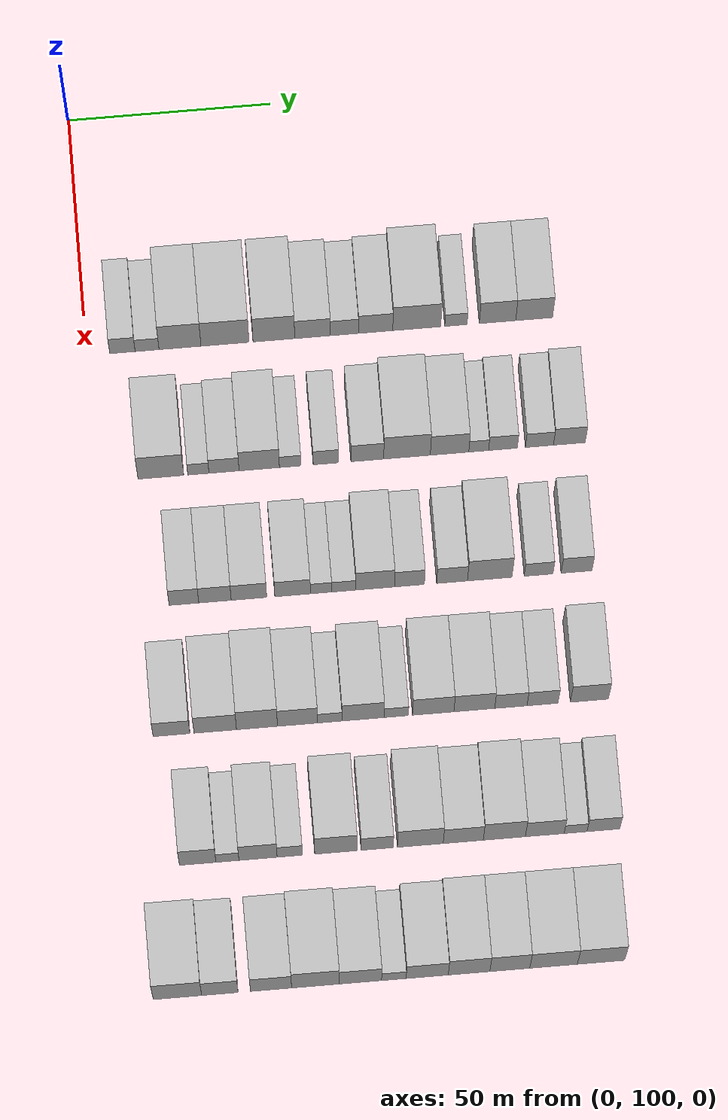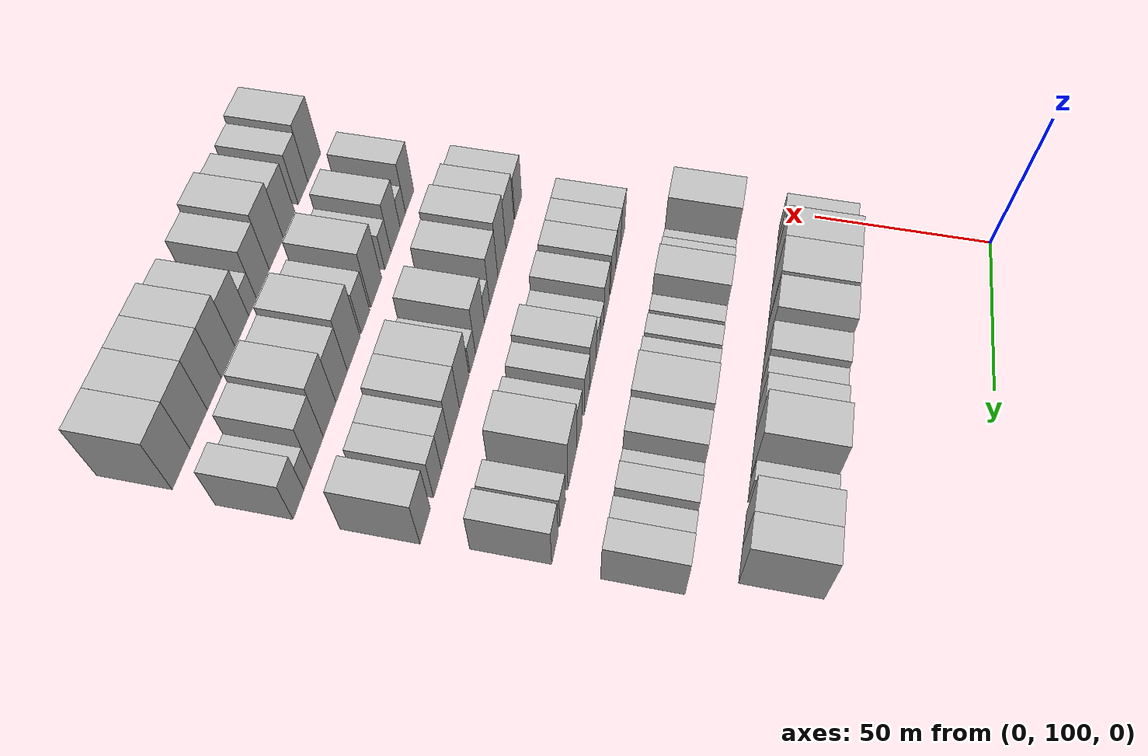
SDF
<sdf version="1.6">
 <world name="default">
  <model name="building_69">
   <static>1</static>
   <pose>50.0000 108.8037 0 0.000000 0.000000 0.000000</pose>
   <link name="link">
    <pose>0 0 7.50 0 0 0</pose>
    <collision name="collision"><geometry><box><size>20.0000 6.2501 15.0000</size></box></geometry></collision>
    <visual name="visual">
     <cast_shadows>0</cast_shadows>
     <geometry><box><size>20.0000 6.2501 15.0000</size></box></geometry>
     <material>
      <script>
       <uri>model://HANNAS_wall/materials/scripts</uri>
       <uri>model://HANNAS_wall/materials/textures</uri>
       <name>vrc/HANNAS_wall</name>
      </script>
     </material>
    </visual>
   </link>
  </model>
  <model name="building_70">
   <static>1</static>
   <pose>50.0000 114.8649 0 0.000000 0.000000 0.000000</pose>
   <link name="link">
    <pose>0 0 6.00 0 0 0</pose>
    <collision name="collision"><geometry><box><size>20.0000 5.8724 12.0000</size></box></geometry></collision>
    <visual name="visual">
     <cast_shadows>0</cast_shadows>
     <geometry><box><size>20.0000 5.8724 12.0000</size></box></geometry>
     <material>
      <script>
       <uri>model://HANNAS_wall/materials/scripts</uri>
       <uri>model://HANNAS_wall/materials/textures</uri>
       <name>vrc/HANNAS_wall</name>
      </script>
     </material>
    </visual>
   </link>
  </model>
  <model name="building_71">
   <static>1</static>
   <pose>50.0000 122.9690 0 0.000000 0.000000 0.000000</pose>
   <link name="link">
    <pose>0 0 12.00 0 0 0</pose>
    <collision name="collision"><geometry><box><size>20.0000 10.3356 24.0000</size></box></geometry></collision>
    <visual name="visual">
     <cast_shadows>0</cast_shadows>
     <geometry><box><size>20.0000 10.3356 24.0000</size></box></geometry>
     <material>
      <script>
       <uri>model://HANNAS_wall/materials/scripts</uri>
       <uri>model://HANNAS_wall/materials/textures</uri>
       <name>vrc/HANNAS_wall</name>
      </script>
     </material>
    </visual>
   </link>
  </model>
  <model name="building_72">
   <static>1</static>
   <pose>50.0000 134.0498 0 0.000000 0.000000 0.000000</pose>
   <link name="link">
    <pose>0 0 12.00 0 0 0</pose>
    <collision name="collision"><geometry><box><size>20.0000 11.8261 24.0000</size></box></geometry></collision>
    <visual name="visual">
     <cast_shadows>0</cast_shadows>
     <geometry><box><size>20.0000 11.8261 24.0000</size></box></geometry>
     <material>
      <script>
       <uri>model://HANNAS_wall/materials/scripts</uri>
       <uri>model://HANNAS_wall/materials/textures</uri>
       <name>vrc/HANNAS_wall</name>
      </script>
     </material>
    </visual>
   </link>
  </model>
  <model name="building_73">
   <static>1</static>
   <pose>50.0000 146.1005 0 0.000000 0.000000 0.000000</pose>
   <link name="link">
    <pose>0 0 12.00 0 0 0</pose>
    <collision name="collision"><geometry><box><size>20.0000 10.2753 24.0000</size></box></geometry></collision>
    <visual name="visual">
     <cast_shadows>0</cast_shadows>
     <geometry><box><size>20.0000 10.2753 24.0000</size></box></geometry>
     <material>
      <script>
       <uri>model://HANNAS_wall/materials/scripts</uri>
       <uri>model://HANNAS_wall/materials/textures</uri>
       <name>vrc/HANNAS_wall</name>
      </script>
     </material>
    </visual>
   </link>
  </model>
  <model name="building_74">
   <static>1</static>
   <pose>50.0000 155.6452 0 0.000000 0.000000 0.000000</pose>
   <link name="link">
    <pose>0 0 9.00 0 0 0</pose>
    <collision name="collision"><geometry><box><size>20.0000 8.8141 18.0000</size></box></geometry></collision>
    <visual name="visual">
     <cast_shadows>0</cast_shadows>
     <geometry><box><size>20.0000 8.8141 18.0000</size></box></geometry>
     <material>
      <script>
       <uri>model://HANNAS_wall/materials/scripts</uri>
       <uri>model://HANNAS_wall/materials/textures</uri>
       <name>vrc/HANNAS_wall</name>
      </script>
     </material>
    </visual>
   </link>
  </model>
  <model name="building_75">
   <static>1</static>
   <pose>50.0000 163.5061 0 0.000000 0.000000 0.000000</pose>
   <link name="link">
    <pose>0 0 7.50 0 0 0</pose>
    <collision name="collision"><geometry><box><size>20.0000 6.9077 15.0000</size></box></geometry></collision>
    <visual name="visual">
     <cast_shadows>0</cast_shadows>
     <geometry><box><size>20.0000 6.9077 15.0000</size></box></geometry>
     <material>
      <script>
       <uri>model://HANNAS_wall/materials/scripts</uri>
       <uri>model://HANNAS_wall/materials/textures</uri>
       <name>vrc/HANNAS_wall</name>
      </script>
     </material>
    </visual>
   </link>
  </model>
  <model name="building_76">
   <static>1</static>
   <pose>50.0000 171.1887 0 0.000000 0.000000 0.000000</pose>
   <link name="link">
    <pose>0 0 9.00 0 0 0</pose>
    <collision name="collision"><geometry><box><size>20.0000 8.4576 18.0000</size></box></geometry></collision>
    <visual name="visual">
     <cast_shadows>0</cast_shadows>
     <geometry><box><size>20.0000 8.4576 18.0000</size></box></geometry>
     <material>
      <script>
       <uri>model://HANNAS_wall/materials/scripts</uri>
       <uri>model://HANNAS_wall/materials/textures</uri>
       <name>vrc/HANNAS_wall</name>
      </script>
     </material>
    </visual>
   </link>
  </model>
  <model name="building_77">
   <static>1</static>
   <pose>50.0000 181.3337 0 0.000000 0.000000 0.000000</pose>
   <link name="link">
    <pose>0 0 12.00 0 0 0</pose>
    <collision name="collision"><geometry><box><size>20.0000 11.8323 24.0000</size></box></geometry></collision>
    <visual name="visual">
     <cast_shadows>0</cast_shadows>
     <geometry><box><size>20.0000 11.8323 24.0000</size></box></geometry>
     <material>
      <script>
       <uri>model://HANNAS_wall/materials/scripts</uri>
       <uri>model://HANNAS_wall/materials/textures</uri>
       <name>vrc/HANNAS_wall</name>
      </script>
     </material>
    </visual>
   </link>
  </model>
  <model name="building_78">
   <static>1</static>
   <pose>50.0000 191.0068 0 0.000000 0.000000 0.000000</pose>
   <link name="link">
    <pose>0 0 6.00 0 0 0</pose>
    <collision name="collision"><geometry><box><size>20.0000 5.5139 12.0000</size></box></geometry></collision>
    <visual name="visual">
     <cast_shadows>0</cast_shadows>
     <geometry><box><size>20.0000 5.5139 12.0000</size></box></geometry>
     <material>
      <script>
       <uri>model://HANNAS_wall/materials/scripts</uri>
       <uri>model://HANNAS_wall/materials/textures</uri>
       <name>vrc/HANNAS_wall</name>
      </script>
     </material>
    </visual>
   </link>
  </model>
  <model name="building_79">
   <static>1</static>
   <pose>50.0000 201.2612 0 0.000000 0.000000 0.000000</pose>
   <link name="link">
    <pose>0 0 10.50 0 0 0</pose>
    <collision name="collision"><geometry><box><size>20.0000 8.9948 21.0000</size></box></geometry></collision>
    <visual name="visual">
     <cast_shadows>0</cast_shadows>
     <geometry><box><size>20.0000 8.9948 21.0000</size></box></geometry>
     <material>
      <script>
       <uri>model://HANNAS_wall/materials/scripts</uri>
       <uri>model://HANNAS_wall/materials/textures</uri>
       <name>vrc/HANNAS_wall</name>
      </script>
     </material>
    </visual>
   </link>
  </model>
  <model name="building_80">
   <static>1</static>
   <pose>50.0000 210.3020 0 0.000000 0.000000 0.000000</pose>
   <link name="link">
    <pose>0 0 10.50 0 0 0</pose>
    <collision name="collision"><geometry><box><size>20.0000 9.0868 21.0000</size></box></geometry></collision>
    <visual name="visual">
     <cast_shadows>0</cast_shadows>
     <geometry><box><size>20.0000 9.0868 21.0000</size></box></geometry>
     <material>
      <script>
       <uri>model://HANNAS_wall/materials/scripts</uri>
       <uri>model://HANNAS_wall/materials/textures</uri>
       <name>vrc/HANNAS_wall</name>
      </script>
     </material>
    </visual>
   </link>
  </model>
  <model name="building_191">
   <static>1</static>
   <pose>82.0000 115.7651 0 0.000000 0.000000 0.000000</pose>
   <link name="link">
    <pose>0 0 12.00 0 0 0</pose>
    <collision name="collision"><geometry><box><size>20.0000 11.2142 24.0000</size></box></geometry></collision>
    <visual name="visual">
     <cast_shadows>0</cast_shadows>
     <geometry><box><size>20.0000 11.2142 24.0000</size></box></geometry>
     <material>
      <script>
       <uri>model://HANNAS_wall/materials/scripts</uri>
       <uri>model://HANNAS_wall/materials/textures</uri>
       <name>vrc/HANNAS_wall</name>
      </script>
     </material>
    </visual>
   </link>
  </model>
  <model name="building_192">
   <static>1</static>
   <pose>82.0000 124.9612 0 0.000000 0.000000 0.000000</pose>
   <link name="link">
    <pose>0 0 6.00 0 0 0</pose>
    <collision name="collision"><geometry><box><size>20.0000 5.1780 12.0000</size></box></geometry></collision>
    <visual name="visual">
     <cast_shadows>0</cast_shadows>
     <geometry><box><size>20.0000 5.1780 12.0000</size></box></geometry>
     <material>
      <script>
       <uri>model://HANNAS_wall/materials/scripts</uri>
       <uri>model://HANNAS_wall/materials/textures</uri>
       <name>vrc/HANNAS_wall</name>
      </script>
     </material>
    </visual>
   </link>
  </model>
  <model name="building_193">
   <static>1</static>
   <pose>82.0000 131.2484 0 0.000000 0.000000 0.000000</pose>
   <link name="link">
    <pose>0 0 7.50 0 0 0</pose>
    <collision name="collision"><geometry><box><size>20.0000 7.3964 15.0000</size></box></geometry></collision>
    <visual name="visual">
     <cast_shadows>0</cast_shadows>
     <geometry><box><size>20.0000 7.3964 15.0000</size></box></geometry>
     <material>
      <script>
       <uri>model://HANNAS_wall/materials/scripts</uri>
       <uri>model://HANNAS_wall/materials/textures</uri>
       <name>vrc/HANNAS_wall</name>
      </script>
     </material>
    </visual>
   </link>
  </model>
  <model name="building_194">
   <static>1</static>
   <pose>82.0000 139.9005 0 0.000000 0.000000 0.000000</pose>
   <link name="link">
    <pose>0 0 10.50 0 0 0</pose>
    <collision name="collision"><geometry><box><size>20.0000 9.9077 21.0000</size></box></geometry></collision>
    <visual name="visual">
     <cast_shadows>0</cast_shadows>
     <geometry><box><size>20.0000 9.9077 21.0000</size></box></geometry>
     <material>
      <script>
       <uri>model://HANNAS_wall/materials/scripts</uri>
       <uri>model://HANNAS_wall/materials/textures</uri>
       <name>vrc/HANNAS_wall</name>
      </script>
     </material>
    </visual>
   </link>
  </model>
  <model name="building_195">
   <static>1</static>
   <pose>82.0000 147.5036 0 0.000000 0.000000 0.000000</pose>
   <link name="link">
    <pose>0 0 6.00 0 0 0</pose>
    <collision name="collision"><geometry><box><size>20.0000 5.2987 12.0000</size></box></geometry></collision>
    <visual name="visual">
     <cast_shadows>0</cast_shadows>
     <geometry><box><size>20.0000 5.2987 12.0000</size></box></geometry>
     <material>
      <script>
       <uri>model://HANNAS_wall/materials/scripts</uri>
       <uri>model://HANNAS_wall/materials/textures</uri>
       <name>vrc/HANNAS_wall</name>
      </script>
     </material>
    </visual>
   </link>
  </model>
  <model name="building_196">
   <static>1</static>
   <pose>82.0000 156.2833 0 0.000000 0.000000 0.000000</pose>
   <link name="link">
    <pose>0 0 7.50 0 0 0</pose>
    <collision name="collision"><geometry><box><size>20.0000 6.2606 15.0000</size></box></geometry></collision>
    <visual name="visual">
     <cast_shadows>0</cast_shadows>
     <geometry><box><size>20.0000 6.2606 15.0000</size></box></geometry>
     <material>
      <script>
       <uri>model://HANNAS_wall/materials/scripts</uri>
       <uri>model://HANNAS_wall/materials/textures</uri>
       <name>vrc/HANNAS_wall</name>
      </script>
     </material>
    </visual>
   </link>
  </model>
  <model name="building_197">
   <static>1</static>
   <pose>82.0000 166.4361 0 0.000000 0.000000 0.000000</pose>
   <link name="link">
    <pose>0 0 9.00 0 0 0</pose>
    <collision name="collision"><geometry><box><size>20.0000 8.0451 18.0000</size></box></geometry></collision>
    <visual name="visual">
     <cast_shadows>0</cast_shadows>
     <geometry><box><size>20.0000 8.0451 18.0000</size></box></geometry>
     <material>
      <script>
       <uri>model://HANNAS_wall/materials/scripts</uri>
       <uri>model://HANNAS_wall/materials/textures</uri>
       <name>vrc/HANNAS_wall</name>
      </script>
     </material>
    </visual>
   </link>
  </model>
  <model name="building_198">
   <static>1</static>
   <pose>82.0000 176.1907 0 0.000000 0.000000 0.000000</pose>
   <link name="link">
    <pose>0 0 12.00 0 0 0</pose>
    <collision name="collision"><geometry><box><size>20.0000 11.4642 24.0000</size></box></geometry></collision>
    <visual name="visual">
     <cast_shadows>0</cast_shadows>
     <geometry><box><size>20.0000 11.4642 24.0000</size></box></geometry>
     <material>
      <script>
       <uri>model://HANNAS_wall/materials/scripts</uri>
       <uri>model://HANNAS_wall/materials/textures</uri>
       <name>vrc/HANNAS_wall</name>
      </script>
     </material>
    </visual>
   </link>
  </model>
  <model name="building_199">
   <static>1</static>
   <pose>82.0000 186.6505 0 0.000000 0.000000 0.000000</pose>
   <link name="link">
    <pose>0 0 10.50 0 0 0</pose>
    <collision name="collision"><geometry><box><size>20.0000 9.4553 21.0000</size></box></geometry></collision>
    <visual name="visual">
     <cast_shadows>0</cast_shadows>
     <geometry><box><size>20.0000 9.4553 21.0000</size></box></geometry>
     <material>
      <script>
       <uri>model://HANNAS_wall/materials/scripts</uri>
       <uri>model://HANNAS_wall/materials/textures</uri>
       <name>vrc/HANNAS_wall</name>
      </script>
     </material>
    </visual>
   </link>
  </model>
  <model name="building_200">
   <static>1</static>
   <pose>82.0000 193.8093 0 0.000000 0.000000 0.000000</pose>
   <link name="link">
    <pose>0 0 6.00 0 0 0</pose>
    <collision name="collision"><geometry><box><size>20.0000 4.8623 12.0000</size></box></geometry></collision>
    <visual name="visual">
     <cast_shadows>0</cast_shadows>
     <geometry><box><size>20.0000 4.8623 12.0000</size></box></geometry>
     <material>
      <script>
       <uri>model://HANNAS_wall/materials/scripts</uri>
       <uri>model://HANNAS_wall/materials/textures</uri>
       <name>vrc/HANNAS_wall</name>
      </script>
     </material>
    </visual>
   </link>
  </model>
  <model name="building_201">
   <static>1</static>
   <pose>82.0000 199.7727 0 0.000000 0.000000 0.000000</pose>
   <link name="link">
    <pose>0 0 7.50 0 0 0</pose>
    <collision name="collision"><geometry><box><size>20.0000 7.0646 15.0000</size></box></geometry></collision>
    <visual name="visual">
     <cast_shadows>0</cast_shadows>
     <geometry><box><size>20.0000 7.0646 15.0000</size></box></geometry>
     <material>
      <script>
       <uri>model://HANNAS_wall/materials/scripts</uri>
       <uri>model://HANNAS_wall/materials/textures</uri>
       <name>vrc/HANNAS_wall</name>
      </script>
     </material>
    </visual>
   </link>
  </model>
  <model name="building_202">
   <static>1</static>
   <pose>82.0000 208.7491 0 0.000000 0.000000 0.000000</pose>
   <link name="link">
    <pose>0 0 7.50 0 0 0</pose>
    <collision name="collision"><geometry><box><size>20.0000 6.8882 15.0000</size></box></geometry></collision>
    <visual name="visual">
     <cast_shadows>0</cast_shadows>
     <geometry><box><size>20.0000 6.8882 15.0000</size></box></geometry>
     <material>
      <script>
       <uri>model://HANNAS_wall/materials/scripts</uri>
       <uri>model://HANNAS_wall/materials/textures</uri>
       <name>vrc/HANNAS_wall</name>
      </script>
     </material>
    </visual>
   </link>
  </model>
  <model name="building_203">
   <static>1</static>
   <pose>82.0000 216.0948 0 0.000000 0.000000 0.000000</pose>
   <link name="link">
    <pose>0 0 9.00 0 0 0</pose>
    <collision name="collision"><geometry><box><size>20.0000 7.8031 18.0000</size></box></geometry></collision>
    <visual name="visual">
     <cast_shadows>0</cast_shadows>
     <geometry><box><size>20.0000 7.8031 18.0000</size></box></geometry>
     <material>
      <script>
       <uri>model://HANNAS_wall/materials/scripts</uri>
       <uri>model://HANNAS_wall/materials/textures</uri>
       <name>vrc/HANNAS_wall</name>
      </script>
     </material>
    </visual>
   </link>
  </model>
  <model name="building_316">
   <static>1</static>
   <pose>114.0000 118.9099 0 0.000000 0.000000 0.000000</pose>
   <link name="link">
    <pose>0 0 9.00 0 0 0</pose>
    <collision name="collision"><geometry><box><size>20.0000 7.2410 18.0000</size></box></geometry></collision>
    <visual name="visual">
     <cast_shadows>0</cast_shadows>
     <geometry><box><size>20.0000 7.2410 18.0000</size></box></geometry>
     <material>
      <script>
       <uri>model://HANNAS_wall/materials/scripts</uri>
       <uri>model://HANNAS_wall/materials/textures</uri>
       <name>vrc/HANNAS_wall</name>
      </script>
     </material>
    </visual>
   </link>
  </model>
  <model name="building_317">
   <static>1</static>
   <pose>114.0000 126.4927 0 0.000000 0.000000 0.000000</pose>
   <link name="link">
    <pose>0 0 9.00 0 0 0</pose>
    <collision name="collision"><geometry><box><size>20.0000 7.9246 18.0000</size></box></geometry></collision>
    <visual name="visual">
     <cast_shadows>0</cast_shadows>
     <geometry><box><size>20.0000 7.9246 18.0000</size></box></geometry>
     <material>
      <script>
       <uri>model://HANNAS_wall/materials/scripts</uri>
       <uri>model://HANNAS_wall/materials/textures</uri>
       <name>vrc/HANNAS_wall</name>
      </script>
     </material>
    </visual>
   </link>
  </model>
  <model name="building_318">
   <static>1</static>
   <pose>114.0000 134.7920 0 0.000000 0.000000 0.000000</pose>
   <link name="link">
    <pose>0 0 9.00 0 0 0</pose>
    <collision name="collision"><geometry><box><size>20.0000 8.6740 18.0000</size></box></geometry></collision>
    <visual name="visual">
     <cast_shadows>0</cast_shadows>
     <geometry><box><size>20.0000 8.6740 18.0000</size></box></geometry>
     <material>
      <script>
       <uri>model://HANNAS_wall/materials/scripts</uri>
       <uri>model://HANNAS_wall/materials/textures</uri>
       <name>vrc/HANNAS_wall</name>
      </script>
     </material>
    </visual>
   </link>
  </model>
  <model name="building_319">
   <static>1</static>
   <pose>114.0000 145.4764 0 0.000000 0.000000 0.000000</pose>
   <link name="link">
    <pose>0 0 9.00 0 0 0</pose>
    <collision name="collision"><geometry><box><size>20.0000 8.6948 18.0000</size></box></geometry></collision>
    <visual name="visual">
     <cast_shadows>0</cast_shadows>
     <geometry><box><size>20.0000 8.6948 18.0000</size></box></geometry>
     <material>
      <script>
       <uri>model://HANNAS_wall/materials/scripts</uri>
       <uri>model://HANNAS_wall/materials/textures</uri>
       <name>vrc/HANNAS_wall</name>
      </script>
     </material>
    </visual>
   </link>
  </model>
  <model name="building_320">
   <static>1</static>
   <pose>114.0000 152.4386 0 0.000000 0.000000 0.000000</pose>
   <link name="link">
    <pose>0 0 6.00 0 0 0</pose>
    <collision name="collision"><geometry><box><size>20.0000 5.2296 12.0000</size></box></geometry></collision>
    <visual name="visual">
     <cast_shadows>0</cast_shadows>
     <geometry><box><size>20.0000 5.2296 12.0000</size></box></geometry>
     <material>
      <script>
       <uri>model://HANNAS_wall/materials/scripts</uri>
       <uri>model://HANNAS_wall/materials/textures</uri>
       <name>vrc/HANNAS_wall</name>
      </script>
     </material>
    </visual>
   </link>
  </model>
  <model name="building_321">
   <static>1</static>
   <pose>114.0000 157.9872 0 0.000000 0.000000 0.000000</pose>
   <link name="link">
    <pose>0 0 6.00 0 0 0</pose>
    <collision name="collision"><geometry><box><size>20.0000 5.8675 12.0000</size></box></geometry></collision>
    <visual name="visual">
     <cast_shadows>0</cast_shadows>
     <geometry><box><size>20.0000 5.8675 12.0000</size></box></geometry>
     <material>
      <script>
       <uri>model://HANNAS_wall/materials/scripts</uri>
       <uri>model://HANNAS_wall/materials/textures</uri>
       <name>vrc/HANNAS_wall</name>
      </script>
     </material>
    </visual>
   </link>
  </model>
  <model name="building_322">
   <static>1</static>
   <pose>114.0000 165.6521 0 0.000000 0.000000 0.000000</pose>
   <link name="link">
    <pose>0 0 10.50 0 0 0</pose>
    <collision name="collision"><geometry><box><size>20.0000 9.4625 21.0000</size></box></geometry></collision>
    <visual name="visual">
     <cast_shadows>0</cast_shadows>
     <geometry><box><size>20.0000 9.4625 21.0000</size></box></geometry>
     <material>
      <script>
       <uri>model://HANNAS_wall/materials/scripts</uri>
       <uri>model://HANNAS_wall/materials/textures</uri>
       <name>vrc/HANNAS_wall</name>
      </script>
     </material>
    </visual>
   </link>
  </model>
  <model name="building_323">
   <static>1</static>
   <pose>114.0000 174.0475 0 0.000000 0.000000 0.000000</pose>
   <link name="link">
    <pose>0 0 9.00 0 0 0</pose>
    <collision name="collision"><geometry><box><size>20.0000 7.3283 18.0000</size></box></geometry></collision>
    <visual name="visual">
     <cast_shadows>0</cast_shadows>
     <geometry><box><size>20.0000 7.3283 18.0000</size></box></geometry>
     <material>
      <script>
       <uri>model://HANNAS_wall/materials/scripts</uri>
       <uri>model://HANNAS_wall/materials/textures</uri>
       <name>vrc/HANNAS_wall</name>
      </script>
     </material>
    </visual>
   </link>
  </model>
  <model name="building_324">
   <static>1</static>
   <pose>114.0000 184.4792 0 0.000000 0.000000 0.000000</pose>
   <link name="link">
    <pose>0 0 9.00 0 0 0</pose>
    <collision name="collision"><geometry><box><size>20.0000 7.5352 18.0000</size></box></geometry></collision>
    <visual name="visual">
     <cast_shadows>0</cast_shadows>
     <geometry><box><size>20.0000 7.5352 18.0000</size></box></geometry>
     <material>
      <script>
       <uri>model://HANNAS_wall/materials/scripts</uri>
       <uri>model://HANNAS_wall/materials/textures</uri>
       <name>vrc/HANNAS_wall</name>
      </script>
     </material>
    </visual>
   </link>
  </model>
  <model name="building_325">
   <static>1</static>
   <pose>114.0000 193.6994 0 0.000000 0.000000 0.000000</pose>
   <link name="link">
    <pose>0 0 12.00 0 0 0</pose>
    <collision name="collision"><geometry><box><size>20.0000 10.9053 24.0000</size></box></geometry></collision>
    <visual name="visual">
     <cast_shadows>0</cast_shadows>
     <geometry><box><size>20.0000 10.9053 24.0000</size></box></geometry>
     <material>
      <script>
       <uri>model://HANNAS_wall/materials/scripts</uri>
       <uri>model://HANNAS_wall/materials/textures</uri>
       <name>vrc/HANNAS_wall</name>
      </script>
     </material>
    </visual>
   </link>
  </model>
  <model name="building_326">
   <static>1</static>
   <pose>114.0000 205.6698 0 0.000000 0.000000 0.000000</pose>
   <link name="link">
    <pose>0 0 7.50 0 0 0</pose>
    <collision name="collision"><geometry><box><size>20.0000 7.0355 15.0000</size></box></geometry></collision>
    <visual name="visual">
     <cast_shadows>0</cast_shadows>
     <geometry><box><size>20.0000 7.0355 15.0000</size></box></geometry>
     <material>
      <script>
       <uri>model://HANNAS_wall/materials/scripts</uri>
       <uri>model://HANNAS_wall/materials/textures</uri>
       <name>vrc/HANNAS_wall</name>
      </script>
     </material>
    </visual>
   </link>
  </model>
  <model name="building_327">
   <static>1</static>
   <pose>114.0000 214.9585 0 0.000000 0.000000 0.000000</pose>
   <link name="link">
    <pose>0 0 9.00 0 0 0</pose>
    <collision name="collision"><geometry><box><size>20.0000 7.5420 18.0000</size></box></geometry></collision>
    <visual name="visual">
     <cast_shadows>0</cast_shadows>
     <geometry><box><size>20.0000 7.5420 18.0000</size></box></geometry>
     <material>
      <script>
       <uri>model://HANNAS_wall/materials/scripts</uri>
       <uri>model://HANNAS_wall/materials/textures</uri>
       <name>vrc/HANNAS_wall</name>
      </script>
     </material>
    </visual>
   </link>
  </model>
  <model name="building_437">
   <static>1</static>
   <pose>146.0000 113.3712 0 0.000000 0.000000 0.000000</pose>
   <link name="link">
    <pose>0 0 9.00 0 0 0</pose>
    <collision name="collision"><geometry><box><size>20.0000 8.9436 18.0000</size></box></geometry></collision>
    <visual name="visual">
     <cast_shadows>0</cast_shadows>
     <geometry><box><size>20.0000 8.9436 18.0000</size></box></geometry>
     <material>
      <script>
       <uri>model://HANNAS_wall/materials/scripts</uri>
       <uri>model://HANNAS_wall/materials/textures</uri>
       <name>vrc/HANNAS_wall</name>
      </script>
     </material>
    </visual>
   </link>
  </model>
  <model name="building_438">
   <static>1</static>
   <pose>146.0000 124.0119 0 0.000000 0.000000 0.000000</pose>
   <link name="link">
    <pose>0 0 10.50 0 0 0</pose>
    <collision name="collision"><geometry><box><size>20.0000 10.3377 21.0000</size></box></geometry></collision>
    <visual name="visual">
     <cast_shadows>0</cast_shadows>
     <geometry><box><size>20.0000 10.3377 21.0000</size></box></geometry>
     <material>
      <script>
       <uri>model://HANNAS_wall/materials/scripts</uri>
       <uri>model://HANNAS_wall/materials/textures</uri>
       <name>vrc/HANNAS_wall</name>
      </script>
     </material>
    </visual>
   </link>
  </model>
  <model name="building_439">
   <static>1</static>
   <pose>146.0000 134.1680 0 0.000000 0.000000 0.000000</pose>
   <link name="link">
    <pose>0 0 12.00 0 0 0</pose>
    <collision name="collision"><geometry><box><size>20.0000 9.9744 24.0000</size></box></geometry></collision>
    <visual name="visual">
     <cast_shadows>0</cast_shadows>
     <geometry><box><size>20.0000 9.9744 24.0000</size></box></geometry>
     <material>
      <script>
       <uri>model://HANNAS_wall/materials/scripts</uri>
       <uri>model://HANNAS_wall/materials/textures</uri>
       <name>vrc/HANNAS_wall</name>
      </script>
     </material>
    </visual>
   </link>
  </model>
  <model name="building_440">
   <static>1</static>
   <pose>146.0000 144.0380 0 0.000000 0.000000 0.000000</pose>
   <link name="link">
    <pose>0 0 10.50 0 0 0</pose>
    <collision name="collision"><geometry><box><size>20.0000 9.7655 21.0000</size></box></geometry></collision>
    <visual name="visual">
     <cast_shadows>0</cast_shadows>
     <geometry><box><size>20.0000 9.7655 21.0000</size></box></geometry>
     <material>
      <script>
       <uri>model://HANNAS_wall/materials/scripts</uri>
       <uri>model://HANNAS_wall/materials/textures</uri>
       <name>vrc/HANNAS_wall</name>
      </script>
     </material>
    </visual>
   </link>
  </model>
  <model name="building_441">
   <static>1</static>
   <pose>146.0000 151.9008 0 0.000000 0.000000 0.000000</pose>
   <link name="link">
    <pose>0 0 6.00 0 0 0</pose>
    <collision name="collision"><geometry><box><size>20.0000 5.9601 12.0000</size></box></geometry></collision>
    <visual name="visual">
     <cast_shadows>0</cast_shadows>
     <geometry><box><size>20.0000 5.9601 12.0000</size></box></geometry>
     <material>
      <script>
       <uri>model://HANNAS_wall/materials/scripts</uri>
       <uri>model://HANNAS_wall/materials/textures</uri>
       <name>vrc/HANNAS_wall</name>
      </script>
     </material>
    </visual>
   </link>
  </model>
  <model name="building_442">
   <static>1</static>
   <pose>146.0000 160.0051 0 0.000000 0.000000 0.000000</pose>
   <link name="link">
    <pose>0 0 10.50 0 0 0</pose>
    <collision name="collision"><geometry><box><size>20.0000 10.2484 21.0000</size></box></geometry></collision>
    <visual name="visual">
     <cast_shadows>0</cast_shadows>
     <geometry><box><size>20.0000 10.2484 21.0000</size></box></geometry>
     <material>
      <script>
       <uri>model://HANNAS_wall/materials/scripts</uri>
       <uri>model://HANNAS_wall/materials/textures</uri>
       <name>vrc/HANNAS_wall</name>
      </script>
     </material>
    </visual>
   </link>
  </model>
  <model name="building_443">
   <static>1</static>
   <pose>146.0000 168.0887 0 0.000000 0.000000 0.000000</pose>
   <link name="link">
    <pose>0 0 6.00 0 0 0</pose>
    <collision name="collision"><geometry><box><size>20.0000 5.9189 12.0000</size></box></geometry></collision>
    <visual name="visual">
     <cast_shadows>0</cast_shadows>
     <geometry><box><size>20.0000 5.9189 12.0000</size></box></geometry>
     <material>
      <script>
       <uri>model://HANNAS_wall/materials/scripts</uri>
       <uri>model://HANNAS_wall/materials/textures</uri>
       <name>vrc/HANNAS_wall</name>
      </script>
     </material>
    </visual>
   </link>
  </model>
  <model name="building_444">
   <static>1</static>
   <pose>146.0000 177.0942 0 0.000000 0.000000 0.000000</pose>
   <link name="link">
    <pose>0 0 10.50 0 0 0</pose>
    <collision name="collision"><geometry><box><size>20.0000 10.0920 21.0000</size></box></geometry></collision>
    <visual name="visual">
     <cast_shadows>0</cast_shadows>
     <geometry><box><size>20.0000 10.0920 21.0000</size></box></geometry>
     <material>
      <script>
       <uri>model://HANNAS_wall/materials/scripts</uri>
       <uri>model://HANNAS_wall/materials/textures</uri>
       <name>vrc/HANNAS_wall</name>
      </script>
     </material>
    </visual>
   </link>
  </model>
  <model name="building_445">
   <static>1</static>
   <pose>146.0000 187.1155 0 0.000000 0.000000 0.000000</pose>
   <link name="link">
    <pose>0 0 10.50 0 0 0</pose>
    <collision name="collision"><geometry><box><size>20.0000 9.9505 21.0000</size></box></geometry></collision>
    <visual name="visual">
     <cast_shadows>0</cast_shadows>
     <geometry><box><size>20.0000 9.9505 21.0000</size></box></geometry>
     <material>
      <script>
       <uri>model://HANNAS_wall/materials/scripts</uri>
       <uri>model://HANNAS_wall/materials/textures</uri>
       <name>vrc/HANNAS_wall</name>
      </script>
     </material>
    </visual>
   </link>
  </model>
  <model name="building_446">
   <static>1</static>
   <pose>146.0000 196.0348 0 0.000000 0.000000 0.000000</pose>
   <link name="link">
    <pose>0 0 9.00 0 0 0</pose>
    <collision name="collision"><geometry><box><size>20.0000 7.8881 18.0000</size></box></geometry></collision>
    <visual name="visual">
     <cast_shadows>0</cast_shadows>
     <geometry><box><size>20.0000 7.8881 18.0000</size></box></geometry>
     <material>
      <script>
       <uri>model://HANNAS_wall/materials/scripts</uri>
       <uri>model://HANNAS_wall/materials/textures</uri>
       <name>vrc/HANNAS_wall</name>
      </script>
     </material>
    </visual>
   </link>
  </model>
  <model name="building_447">
   <static>1</static>
   <pose>146.0000 203.7511 0 0.000000 0.000000 0.000000</pose>
   <link name="link">
    <pose>0 0 9.00 0 0 0</pose>
    <collision name="collision"><geometry><box><size>20.0000 7.5443 18.0000</size></box></geometry></collision>
    <visual name="visual">
     <cast_shadows>0</cast_shadows>
     <geometry><box><size>20.0000 7.5443 18.0000</size></box></geometry>
     <material>
      <script>
       <uri>model://HANNAS_wall/materials/scripts</uri>
       <uri>model://HANNAS_wall/materials/textures</uri>
       <name>vrc/HANNAS_wall</name>
      </script>
     </material>
    </visual>
   </link>
  </model>
  <model name="building_448">
   <static>1</static>
   <pose>146.0000 215.1693 0 0.000000 0.000000 0.000000</pose>
   <link name="link">
    <pose>0 0 10.50 0 0 0</pose>
    <collision name="collision"><geometry><box><size>20.0000 9.2922 21.0000</size></box></geometry></collision>
    <visual name="visual">
     <cast_shadows>0</cast_shadows>
     <geometry><box><size>20.0000 9.2922 21.0000</size></box></geometry>
     <material>
      <script>
       <uri>model://HANNAS_wall/materials/scripts</uri>
       <uri>model://HANNAS_wall/materials/textures</uri>
       <name>vrc/HANNAS_wall</name>
      </script>
     </material>
    </visual>
   </link>
  </model>
  <model name="building_557">
   <static>1</static>
   <pose>178.0000 117.2134 0 0.000000 0.000000 0.000000</pose>
   <link name="link">
    <pose>0 0 10.50 0 0 0</pose>
    <collision name="collision"><geometry><box><size>20.0000 8.8202 21.0000</size></box></geometry></collision>
    <visual name="visual">
     <cast_shadows>0</cast_shadows>
     <geometry><box><size>20.0000 8.8202 21.0000</size></box></geometry>
     <material>
      <script>
       <uri>model://HANNAS_wall/materials/scripts</uri>
       <uri>model://HANNAS_wall/materials/textures</uri>
       <name>vrc/HANNAS_wall</name>
      </script>
     </material>
    </visual>
   </link>
  </model>
  <model name="building_558">
   <static>1</static>
   <pose>178.0000 124.4119 0 0.000000 0.000000 0.000000</pose>
   <link name="link">
    <pose>0 0 6.00 0 0 0</pose>
    <collision name="collision"><geometry><box><size>20.0000 5.5768 12.0000</size></box></geometry></collision>
    <visual name="visual">
     <cast_shadows>0</cast_shadows>
     <geometry><box><size>20.0000 5.5768 12.0000</size></box></geometry>
     <material>
      <script>
       <uri>model://HANNAS_wall/materials/scripts</uri>
       <uri>model://HANNAS_wall/materials/textures</uri>
       <name>vrc/HANNAS_wall</name>
      </script>
     </material>
    </visual>
   </link>
  </model>
  <model name="building_559">
   <static>1</static>
   <pose>178.0000 131.8295 0 0.000000 0.000000 0.000000</pose>
   <link name="link">
    <pose>0 0 10.50 0 0 0</pose>
    <collision name="collision"><geometry><box><size>20.0000 9.2583 21.0000</size></box></geometry></collision>
    <visual name="visual">
     <cast_shadows>0</cast_shadows>
     <geometry><box><size>20.0000 9.2583 21.0000</size></box></geometry>
     <material>
      <script>
       <uri>model://HANNAS_wall/materials/scripts</uri>
       <uri>model://HANNAS_wall/materials/textures</uri>
       <name>vrc/HANNAS_wall</name>
      </script>
     </material>
    </visual>
   </link>
  </model>
  <model name="building_560">
   <static>1</static>
   <pose>178.0000 139.5205 0 0.000000 0.000000 0.000000</pose>
   <link name="link">
    <pose>0 0 7.50 0 0 0</pose>
    <collision name="collision"><geometry><box><size>20.0000 6.1236 15.0000</size></box></geometry></collision>
    <visual name="visual">
     <cast_shadows>0</cast_shadows>
     <geometry><box><size>20.0000 6.1236 15.0000</size></box></geometry>
     <material>
      <script>
       <uri>model://HANNAS_wall/materials/scripts</uri>
       <uri>model://HANNAS_wall/materials/textures</uri>
       <name>vrc/HANNAS_wall</name>
      </script>
     </material>
    </visual>
   </link>
  </model>
  <model name="building_561">
   <static>1</static>
   <pose>178.0000 150.7102 0 0.000000 0.000000 0.000000</pose>
   <link name="link">
    <pose>0 0 12.00 0 0 0</pose>
    <collision name="collision"><geometry><box><size>20.0000 10.2559 24.0000</size></box></geometry></collision>
    <visual name="visual">
     <cast_shadows>0</cast_shadows>
     <geometry><box><size>20.0000 10.2559 24.0000</size></box></geometry>
     <material>
      <script>
       <uri>model://HANNAS_wall/materials/scripts</uri>
       <uri>model://HANNAS_wall/materials/textures</uri>
       <name>vrc/HANNAS_wall</name>
      </script>
     </material>
    </visual>
   </link>
  </model>
  <model name="building_562">
   <static>1</static>
   <pose>178.0000 160.7393 0 0.000000 0.000000 0.000000</pose>
   <link name="link">
    <pose>0 0 9.00 0 0 0</pose>
    <collision name="collision"><geometry><box><size>20.0000 7.8022 18.0000</size></box></geometry></collision>
    <visual name="visual">
     <cast_shadows>0</cast_shadows>
     <geometry><box><size>20.0000 7.8022 18.0000</size></box></geometry>
     <material>
      <script>
       <uri>model://HANNAS_wall/materials/scripts</uri>
       <uri>model://HANNAS_wall/materials/textures</uri>
       <name>vrc/HANNAS_wall</name>
      </script>
     </material>
    </visual>
   </link>
  </model>
  <model name="building_563">
   <static>1</static>
   <pose>178.0000 171.1985 0 0.000000 0.000000 0.000000</pose>
   <link name="link">
    <pose>0 0 12.00 0 0 0</pose>
    <collision name="collision"><geometry><box><size>20.0000 11.1161 24.0000</size></box></geometry></collision>
    <visual name="visual">
     <cast_shadows>0</cast_shadows>
     <geometry><box><size>20.0000 11.1161 24.0000</size></box></geometry>
     <material>
      <script>
       <uri>model://HANNAS_wall/materials/scripts</uri>
       <uri>model://HANNAS_wall/materials/textures</uri>
       <name>vrc/HANNAS_wall</name>
      </script>
     </material>
    </visual>
   </link>
  </model>
  <model name="building_564">
   <static>1</static>
   <pose>178.0000 181.6171 0 0.000000 0.000000 0.000000</pose>
   <link name="link">
    <pose>0 0 10.50 0 0 0</pose>
    <collision name="collision"><geometry><box><size>20.0000 9.7212 21.0000</size></box></geometry></collision>
    <visual name="visual">
     <cast_shadows>0</cast_shadows>
     <geometry><box><size>20.0000 9.7212 21.0000</size></box></geometry>
     <material>
      <script>
       <uri>model://HANNAS_wall/materials/scripts</uri>
       <uri>model://HANNAS_wall/materials/textures</uri>
       <name>vrc/HANNAS_wall</name>
      </script>
     </material>
    </visual>
   </link>
  </model>
  <model name="building_565">
   <static>1</static>
   <pose>178.0000 191.5917 0 0.000000 0.000000 0.000000</pose>
   <link name="link">
    <pose>0 0 12.00 0 0 0</pose>
    <collision name="collision"><geometry><box><size>20.0000 10.2281 24.0000</size></box></geometry></collision>
    <visual name="visual">
     <cast_shadows>0</cast_shadows>
     <geometry><box><size>20.0000 10.2281 24.0000</size></box></geometry>
     <material>
      <script>
       <uri>model://HANNAS_wall/materials/scripts</uri>
       <uri>model://HANNAS_wall/materials/textures</uri>
       <name>vrc/HANNAS_wall</name>
      </script>
     </material>
    </visual>
   </link>
  </model>
  <model name="building_566">
   <static>1</static>
   <pose>178.0000 201.4163 0 0.000000 0.000000 0.000000</pose>
   <link name="link">
    <pose>0 0 10.50 0 0 0</pose>
    <collision name="collision"><geometry><box><size>20.0000 9.4211 21.0000</size></box></geometry></collision>
    <visual name="visual">
     <cast_shadows>0</cast_shadows>
     <geometry><box><size>20.0000 9.4211 21.0000</size></box></geometry>
     <material>
      <script>
       <uri>model://HANNAS_wall/materials/scripts</uri>
       <uri>model://HANNAS_wall/materials/textures</uri>
       <name>vrc/HANNAS_wall</name>
      </script>
     </material>
    </visual>
   </link>
  </model>
  <model name="building_567">
   <static>1</static>
   <pose>178.0000 208.9152 0 0.000000 0.000000 0.000000</pose>
   <link name="link">
    <pose>0 0 6.00 0 0 0</pose>
    <collision name="collision"><geometry><box><size>20.0000 5.5766 12.0000</size></box></geometry></collision>
    <visual name="visual">
     <cast_shadows>0</cast_shadows>
     <geometry><box><size>20.0000 5.5766 12.0000</size></box></geometry>
     <material>
      <script>
       <uri>model://HANNAS_wall/materials/scripts</uri>
       <uri>model://HANNAS_wall/materials/textures</uri>
       <name>vrc/HANNAS_wall</name>
      </script>
     </material>
    </visual>
   </link>
  </model>
  <model name="building_568">
   <static>1</static>
   <pose>178.0000 215.6713 0 0.000000 0.000000 0.000000</pose>
   <link name="link">
    <pose>0 0 9.00 0 0 0</pose>
    <collision name="collision"><geometry><box><size>20.0000 7.9356 18.0000</size></box></geometry></collision>
    <visual name="visual">
     <cast_shadows>0</cast_shadows>
     <geometry><box><size>20.0000 7.9356 18.0000</size></box></geometry>
     <material>
      <script>
       <uri>model://HANNAS_wall/materials/scripts</uri>
       <uri>model://HANNAS_wall/materials/textures</uri>
       <name>vrc/HANNAS_wall</name>
      </script>
     </material>
    </visual>
   </link>
  </model>
  <model name="building_672">
   <static>1</static>
   <pose>210.0000 109.7881 0 0.000000 0.000000 0.000000</pose>
   <link name="link">
    <pose>0 0 12.00 0 0 0</pose>
    <collision name="collision"><geometry><box><size>20.0000 11.6865 24.0000</size></box></geometry></collision>
    <visual name="visual">
     <cast_shadows>0</cast_shadows>
     <geometry><box><size>20.0000 11.6865 24.0000</size></box></geometry>
     <material>
      <script>
       <uri>model://HANNAS_wall/materials/scripts</uri>
       <uri>model://HANNAS_wall/materials/textures</uri>
       <name>vrc/HANNAS_wall</name>
      </script>
     </material>
    </visual>
   </link>
  </model>
  <model name="building_673">
   <static>1</static>
   <pose>210.0000 120.0315 0 0.000000 0.000000 0.000000</pose>
   <link name="link">
    <pose>0 0 10.50 0 0 0</pose>
    <collision name="collision"><geometry><box><size>20.0000 8.8003 21.0000</size></box></geometry></collision>
    <visual name="visual">
     <cast_shadows>0</cast_shadows>
     <geometry><box><size>20.0000 8.8003 21.0000</size></box></geometry>
     <material>
      <script>
       <uri>model://HANNAS_wall/materials/scripts</uri>
       <uri>model://HANNAS_wall/materials/textures</uri>
       <name>vrc/HANNAS_wall</name>
      </script>
     </material>
    </visual>
   </link>
  </model>
  <model name="building_674">
   <static>1</static>
   <pose>210.0000 132.3878 0 0.000000 0.000000 0.000000</pose>
   <link name="link">
    <pose>0 0 10.50 0 0 0</pose>
    <collision name="collision"><geometry><box><size>20.0000 9.9124 21.0000</size></box></geometry></collision>
    <visual name="visual">
     <cast_shadows>0</cast_shadows>
     <geometry><box><size>20.0000 9.9124 21.0000</size></box></geometry>
     <material>
      <script>
       <uri>model://HANNAS_wall/materials/scripts</uri>
       <uri>model://HANNAS_wall/materials/textures</uri>
       <name>vrc/HANNAS_wall</name>
      </script>
     </material>
    </visual>
   </link>
  </model>
  <model name="building_675">
   <static>1</static>
   <pose>210.0000 143.1229 0 0.000000 0.000000 0.000000</pose>
   <link name="link">
    <pose>0 0 12.00 0 0 0</pose>
    <collision name="collision"><geometry><box><size>20.0000 11.5578 24.0000</size></box></geometry></collision>
    <visual name="visual">
     <cast_shadows>0</cast_shadows>
     <geometry><box><size>20.0000 11.5578 24.0000</size></box></geometry>
     <material>
      <script>
       <uri>model://HANNAS_wall/materials/scripts</uri>
       <uri>model://HANNAS_wall/materials/textures</uri>
       <name>vrc/HANNAS_wall</name>
      </script>
     </material>
    </visual>
   </link>
  </model>
  <model name="building_676">
   <static>1</static>
   <pose>210.0000 153.9944 0 0.000000 0.000000 0.000000</pose>
   <link name="link">
    <pose>0 0 10.50 0 0 0</pose>
    <collision name="collision"><geometry><box><size>20.0000 10.1854 21.0000</size></box></geometry></collision>
    <visual name="visual">
     <cast_shadows>0</cast_shadows>
     <geometry><box><size>20.0000 10.1854 21.0000</size></box></geometry>
     <material>
      <script>
       <uri>model://HANNAS_wall/materials/scripts</uri>
       <uri>model://HANNAS_wall/materials/textures</uri>
       <name>vrc/HANNAS_wall</name>
      </script>
     </material>
    </visual>
   </link>
  </model>
  <model name="building_677">
   <static>1</static>
   <pose>210.0000 162.0594 0 0.000000 0.000000 0.000000</pose>
   <link name="link">
    <pose>0 0 6.00 0 0 0</pose>
    <collision name="collision"><geometry><box><size>20.0000 5.9445 12.0000</size></box></geometry></collision>
    <visual name="visual">
     <cast_shadows>0</cast_shadows>
     <geometry><box><size>20.0000 5.9445 12.0000</size></box></geometry>
     <material>
      <script>
       <uri>model://HANNAS_wall/materials/scripts</uri>
       <uri>model://HANNAS_wall/materials/textures</uri>
       <name>vrc/HANNAS_wall</name>
      </script>
     </material>
    </visual>
   </link>
  </model>
  <model name="building_678">
   <static>1</static>
   <pose>210.0000 170.1237 0 0.000000 0.000000 0.000000</pose>
   <link name="link">
    <pose>0 0 10.50 0 0 0</pose>
    <collision name="collision"><geometry><box><size>20.0000 10.1842 21.0000</size></box></geometry></collision>
    <visual name="visual">
     <cast_shadows>0</cast_shadows>
     <geometry><box><size>20.0000 10.1842 21.0000</size></box></geometry>
     <material>
      <script>
       <uri>model://HANNAS_wall/materials/scripts</uri>
       <uri>model://HANNAS_wall/materials/textures</uri>
       <name>vrc/HANNAS_wall</name>
      </script>
     </material>
    </visual>
   </link>
  </model>
  <model name="building_679">
   <static>1</static>
   <pose>210.0000 180.2290 0 0.000000 0.000000 0.000000</pose>
   <link name="link">
    <pose>0 0 12.00 0 0 0</pose>
    <collision name="collision"><geometry><box><size>20.0000 10.0265 24.0000</size></box></geometry></collision>
    <visual name="visual">
     <cast_shadows>0</cast_shadows>
     <geometry><box><size>20.0000 10.0265 24.0000</size></box></geometry>
     <material>
      <script>
       <uri>model://HANNAS_wall/materials/scripts</uri>
       <uri>model://HANNAS_wall/materials/textures</uri>
       <name>vrc/HANNAS_wall</name>
      </script>
     </material>
    </visual>
   </link>
  </model>
  <model name="building_680">
   <static>1</static>
   <pose>210.0000 190.0801 0 0.000000 0.000000 0.000000</pose>
   <link name="link">
    <pose>0 0 12.00 0 0 0</pose>
    <collision name="collision"><geometry><box><size>20.0000 9.6757 24.0000</size></box></geometry></collision>
    <visual name="visual">
     <cast_shadows>0</cast_shadows>
     <geometry><box><size>20.0000 9.6757 24.0000</size></box></geometry>
     <material>
      <script>
       <uri>model://HANNAS_wall/materials/scripts</uri>
       <uri>model://HANNAS_wall/materials/textures</uri>
       <name>vrc/HANNAS_wall</name>
      </script>
     </material>
    </visual>
   </link>
  </model>
  <model name="building_681">
   <static>1</static>
   <pose>210.0000 200.6739 0 0.000000 0.000000 0.000000</pose>
   <link name="link">
    <pose>0 0 12.00 0 0 0</pose>
    <collision name="collision"><geometry><box><size>20.0000 11.5119 24.0000</size></box></geometry></collision>
    <visual name="visual">
     <cast_shadows>0</cast_shadows>
     <geometry><box><size>20.0000 11.5119 24.0000</size></box></geometry>
     <material>
      <script>
       <uri>model://HANNAS_wall/materials/scripts</uri>
       <uri>model://HANNAS_wall/materials/textures</uri>
       <name>vrc/HANNAS_wall</name>
      </script>
     </material>
    </visual>
   </link>
  </model>
  <model name="building_682">
   <static>1</static>
   <pose>210.0000 212.1390 0 0.000000 0.000000 0.000000</pose>
   <link name="link">
    <pose>0 0 12.00 0 0 0</pose>
    <collision name="collision"><geometry><box><size>20.0000 11.4182 24.0000</size></box></geometry></collision>
    <visual name="visual">
     <cast_shadows>0</cast_shadows>
     <geometry><box><size>20.0000 11.4182 24.0000</size></box></geometry>
     <material>
      <script>
       <uri>model://HANNAS_wall/materials/scripts</uri>
       <uri>model://HANNAS_wall/materials/textures</uri>
       <name>vrc/HANNAS_wall</name>
      </script>
     </material>
    </visual>
   </link>
  </model>
 </world>
</sdf>
